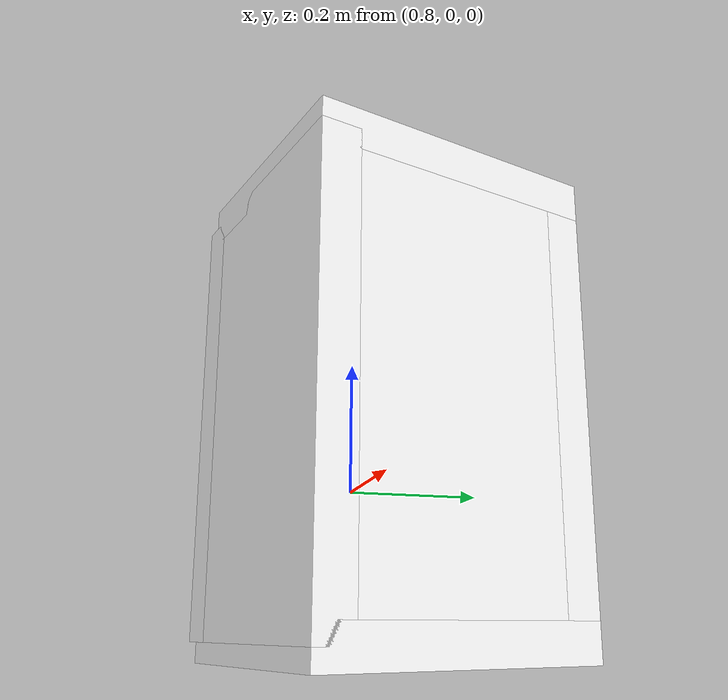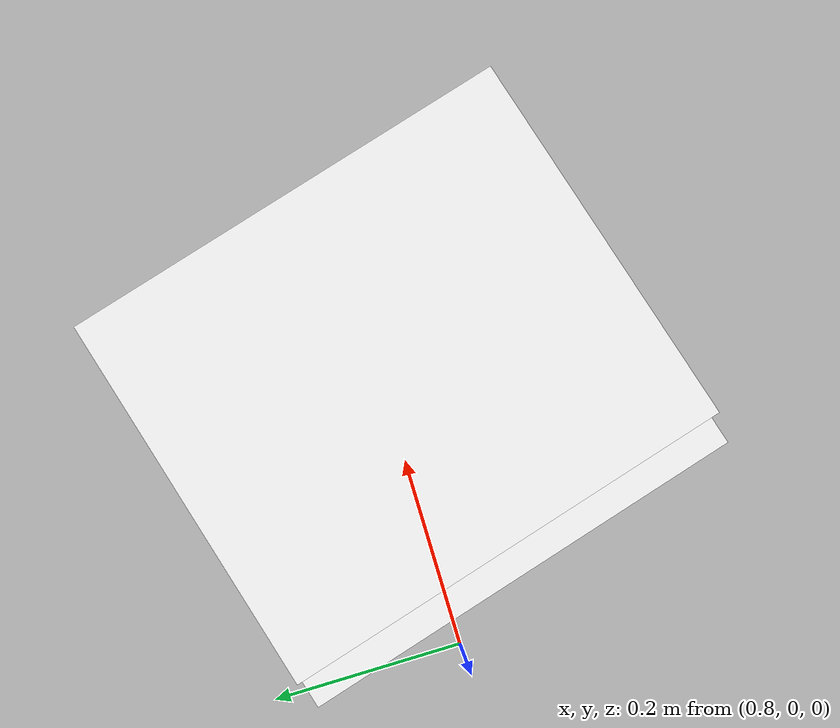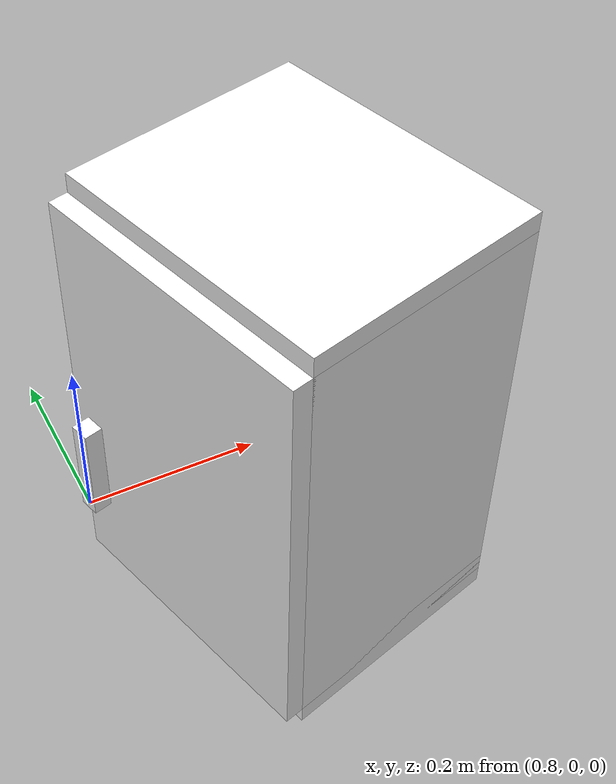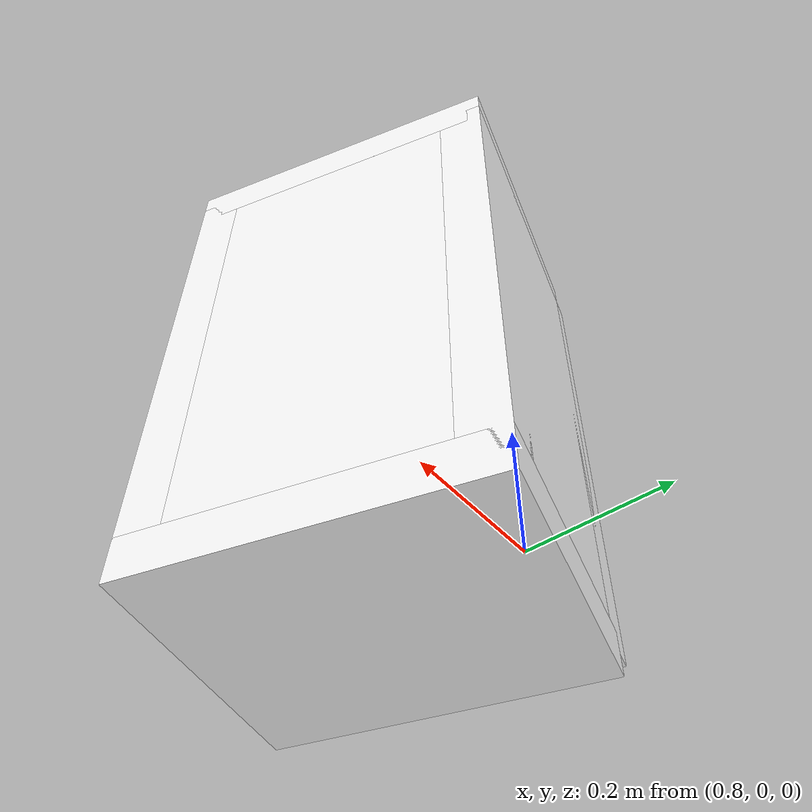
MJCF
<mujoco model="cabinet">
    <compiler angle="radian" eulerseq='zxy' />
    <option gravity = "0 0 0" />
    <option>
        <flag contact = "disable"/>
    </option>
    <statistic	extent="1.0" center="0.0 0.0 0.0"/>
    <visual>
        <map fogstart="3" fogend="5" force="0.1" znear=" 0.100000 " zfar=" 12.000000 "/>
    </visual>
    <size njmax="500" nconmax="100" />
    <actuator>
        <velocity joint="bottom_left_hinge" name="viva_revolution" kv='10'></velocity>
    </actuator>
    <asset>
        <texture builtin="flat" name="tabletex" height="32" width="32" rgb1="1 1 1" type="cube"></texture>
        <texture builtin="flat" name="objtex" height="32" width="32" rgb1="1 1 1" type="cube"></texture>
        <texture builtin="flat" name="handletex" height="32" width="32" rgb1="1 1 1" type="cube"></texture>
        <texture builtin="flat" name="wallpaper" height="32" width="32" rgb1="1 1 1" type="cube"></texture>
        <material name="geomTable" shininess="0.03" specular="0.75" texture="tabletex"></material>
        <material name="geomObj" shininess="0.03" specular="0.75" texture="objtex"></material>
        <material name="geomHandle" shininess="0.03" specular="0.75" texture="handletex"></material>
        <material name="bg" shininess="0.03" specular="0.75" texture="wallpaper"></material>
    </asset>
    <worldbody>
            <body name="cabinet_bottom" pos= " 1.053275 -0.008792 -0.214468 "  quat= " -0.139073 0.000000 0.000000 0.990282" >
                <inertial pos="0 0 0" mass="1" diaginertia="1 1 1" />
                <geom size= " 0.153680 0.181933 0.024294 "  type="box" material="geomObj" name="b"/>
                <body name="cabinet_left" pos= " 0.000000 -0.157639 0.271799 " >
                    <inertial pos="0 0 0" mass="1" diaginertia="1 1 1" />
                    <geom size= " 0.153680 0.024294 0.271799 "  type="box" material="geomObj" name="c" />
                </body>
                <body name="cabinet_right" pos= " 0.000000 0.157639 0.271799 " >
                    <inertial pos="0 0 0" mass="1" diaginertia="1 1 1" />
                    <geom size= " 0.153680 0.024294 0.271799 "  type="box" material="geomObj" name="d" />
                </body>
                <body name="cabinet_top" pos= " 0.000000 0.000000 0.543598 " >
                    <inertial pos="0 0 0" mass="1" diaginertia="1 1 1" />
                    <geom size= " 0.153680 0.181933 0.024294 "  type="box" material="geomObj" name="e"/>
                </body>
                <body name="cabinet_back" pos= " -0.129385 0.000000 0.271799 "  >
                    <inertial pos="0 0 0" mass="1" diaginertia="1 1 1" />
                    <geom size= " 0.024294 0.181933 0.271799 "  type="box" material="geomObj" name="f" />
                </body>
                <body name="cabinet_left_hinge" pos= " 0.153680 0.181933 0.271799 " >
                    <inertial pos= " 0.000000 -0.181933 0.000000 "  mass="1" diaginertia="1 1 1" />
                    <joint name="bottom_left_hinge" type="hinge" pos="0 0 0" axis="0 0 1" limited="true" range= "0 2.3"  />
                    <geom size= " 0.024294 0.181933 0.271799 "  pos= " 0.000000 -0.181933 0.000000 "  type="box" material="geomObj" name="g"/>
                    <body name="handle_link" pos= " 0.038420 -0.325933 -0.088105 " >
                        <inertial pos="0 0 0" mass="1" diaginertia="1 1 1" />
                        <geom size= " 0.011717 0.012468 0.066251 "  type="box" material="geomHandle" name="h"/>
                    </body>
                </body>
            </body>
        <body name="external_camera_body_0" pos="0.0 0 0.00">
            <camera euler="-1.57 1.57 0.0" fovy=" 54.280851 " name="external_camera_0" pos="0.0 0 0"></camera>
            <inertial pos= " 0.00 0.0 0.000000 " mass="1" diaginertia="1 1 1" />
            <joint name="cam_j" pos="0.0 0 0" axis = "1 0 0" type="free" />
        </body>
    </worldbody>
</mujoco>
